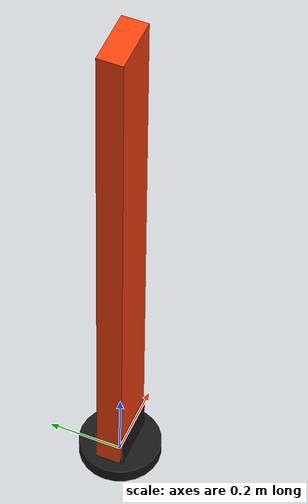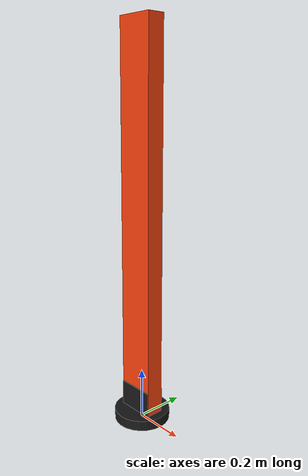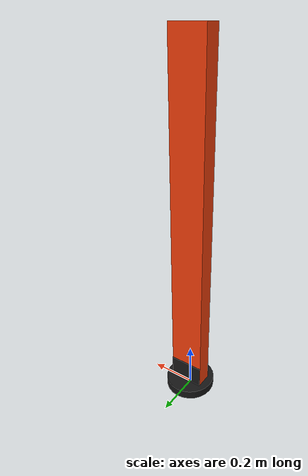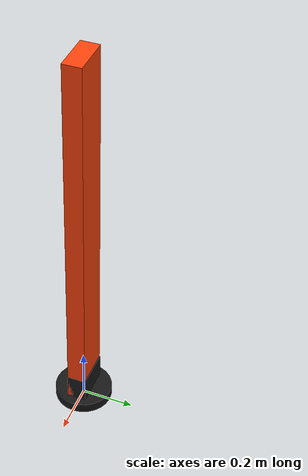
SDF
<?xml version="1.0"?>
<sdf version="1.7">
  <model name="orange_flare">
    <static>1</static>
    <allow_auto_disable>1</allow_auto_disable>

    <link name="link_1">
      <inertial>
        <mass>2.0</mass>
        <pose>0 0 0.10 0 0 0</pose>
        <inertia>
          <ixx>0.05</ixx><ixy>0</ixy><ixz>0</ixz>
          <iyy>0.05</iyy><iyz>0</iyz>
          <izz>0.01</izz>
        </inertia>
      </inertial>

      <!-- Dive weight anchoring the buoy. -->
      <visual name="weight">
        <pose>0 0 0.02 0 0 0</pose>
        <geometry><cylinder><radius>0.11</radius><length>0.04</length></cylinder></geometry>
        <material>
          <ambient>0.03 0.03 0.03 1</ambient>
          <diffuse>0.09 0.09 0.09 1</diffuse>
          <specular>0.04 0.04 0.04 1</specular>
        </material>
      </visual>

      <visual name="blade">
        <pose>0 0 0.79 0 0 0</pose>
        <geometry><box><size>0.15 0.07 1.50</size></box></geometry>
        <material>
          <ambient>0.50 0.13 0.02 1</ambient>
          <diffuse>1.00 0.26 0.05 1</diffuse>
          <specular>0.06 0.06 0.06 1</specular>
        </material>
      </visual>

      <!-- Dark sealed cuff at the bottom of the buoy. -->
      <visual name="cuff">
        <pose>0 0 0.09 0 0 0</pose>
        <geometry><box><size>0.15 0.075 0.10</size></box></geometry>
        <material>
          <ambient>0.03 0.03 0.03 1</ambient>
          <diffuse>0.10 0.10 0.10 1</diffuse>
          <specular>0.04 0.04 0.04 1</specular>
        </material>
      </visual>

      <collision name="weight_collision">
        <pose>0 0 0.02 0 0 0</pose>
        <geometry><cylinder><radius>0.11</radius><length>0.04</length></cylinder></geometry>
      </collision>

      <collision name="blade_collision">
        <pose>0 0 0.79 0 0 0</pose>
        <geometry><box><size>0.15 0.07 1.50</size></box></geometry>
      </collision>
    </link>
  </model>
</sdf>
